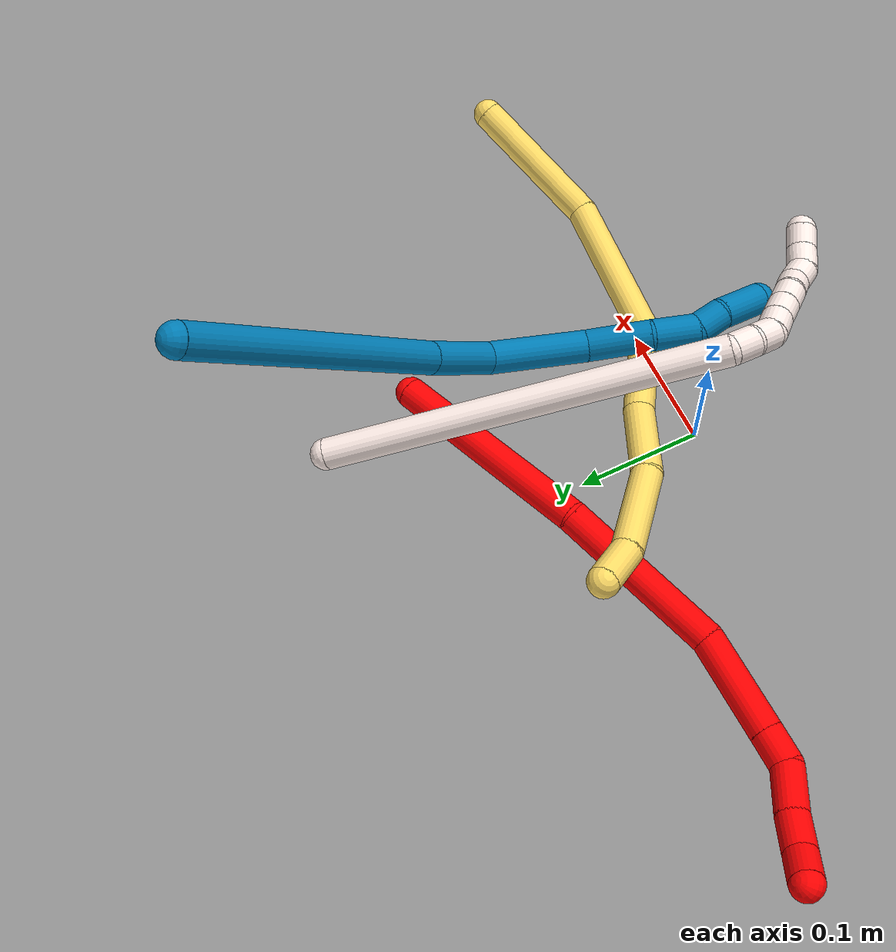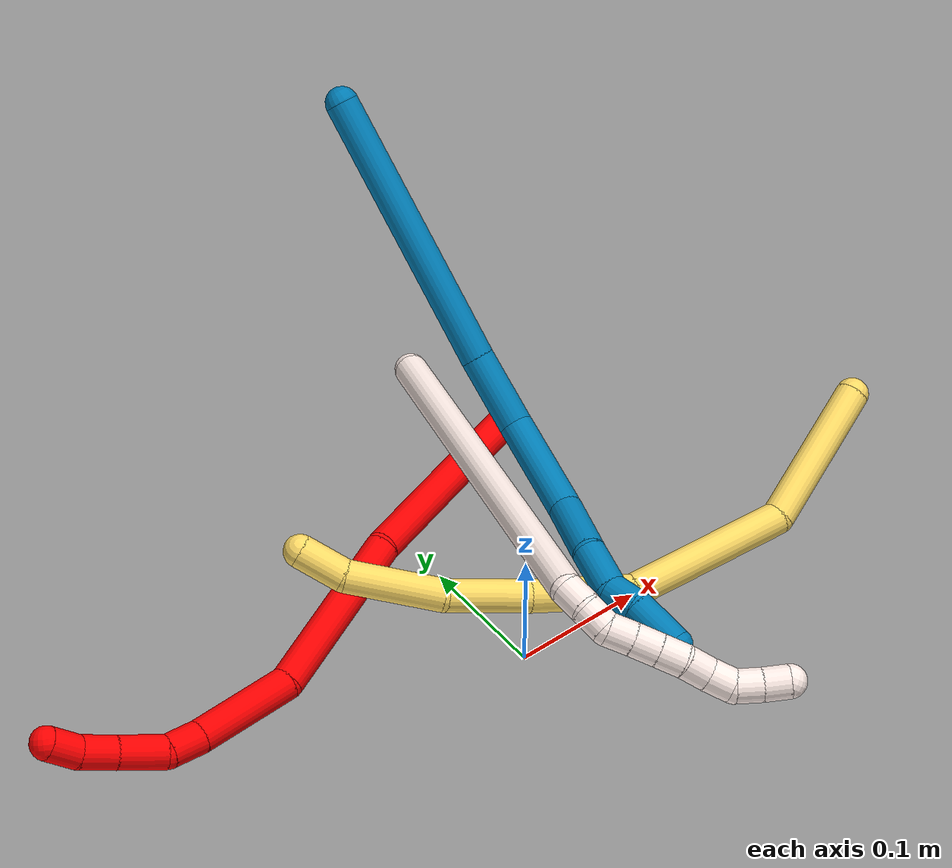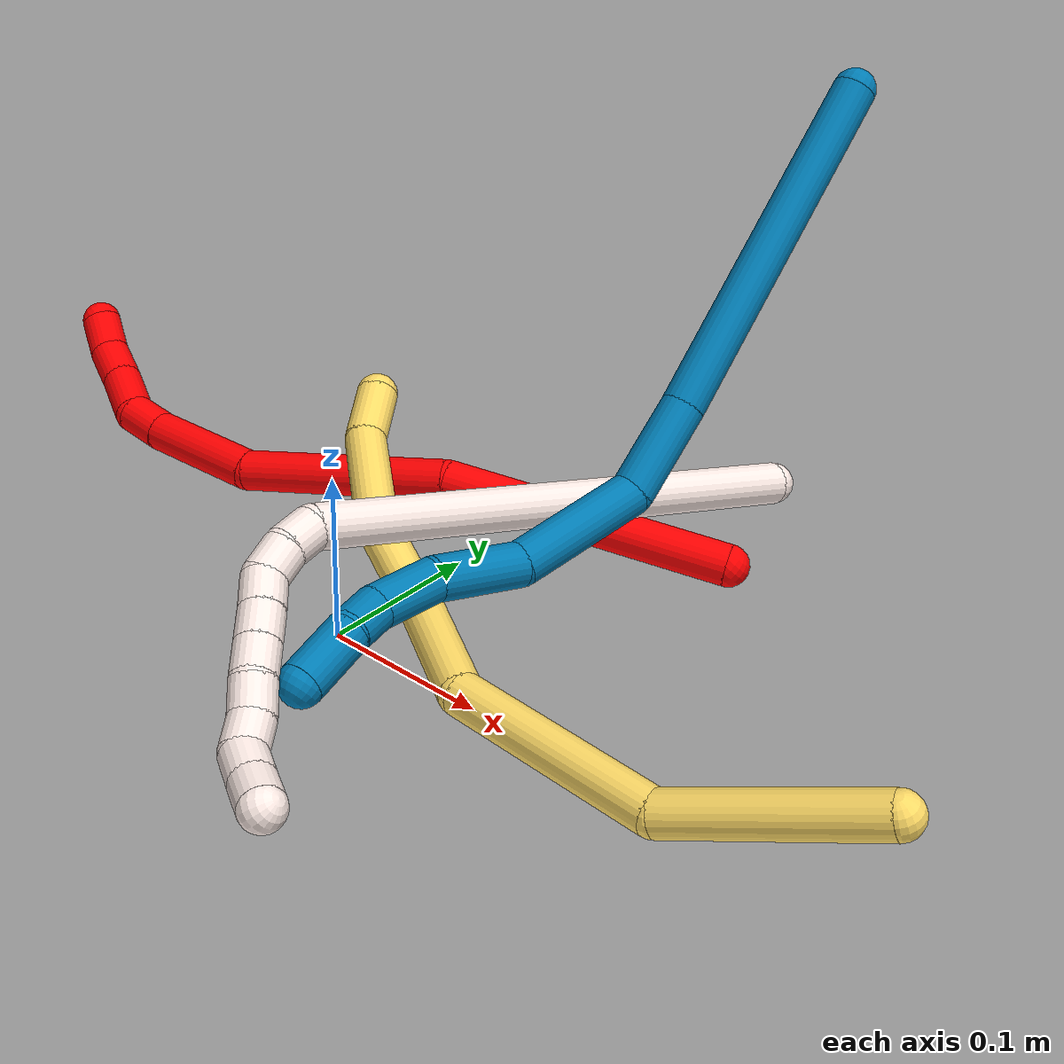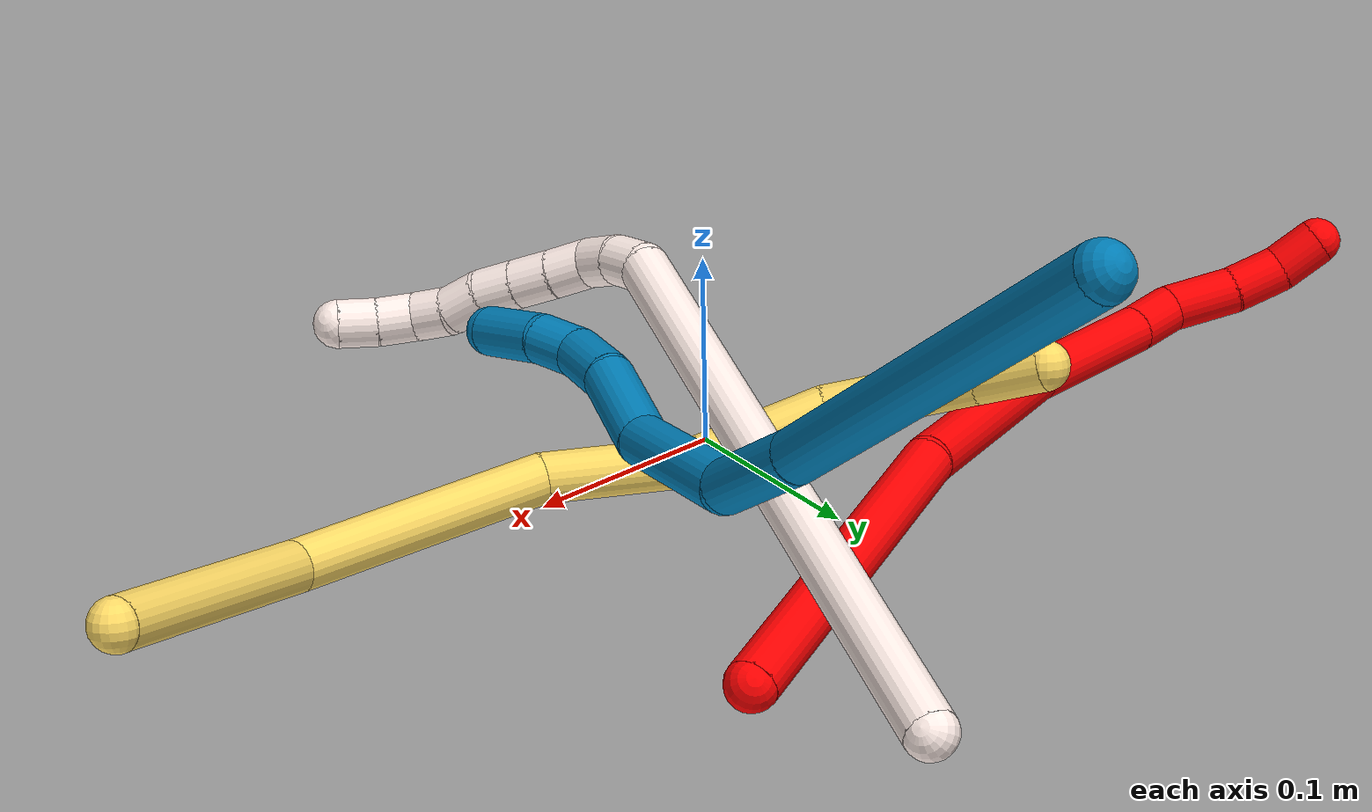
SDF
<sdf version="1.7">
 <world name="default">
  <model name="2">
   <static>0</static>
   <link name="2">
    <collision name="collision-cylinder-e_1_1_4">
     <pose>-0.074376 -0.023233 0.037831 0.550752 -1.03266 -0.3181</pose>
     <geometry><cylinder><radius>0.0125</radius><length>0.173237</length></cylinder></geometry>
     <surface>
      <friction><ode><mu>1.16</mu><mu2>1.16</mu2><slip1>0</slip1><slip2>0</slip2></ode></friction>
      <contact><ode><kp>1e+06</kp><kd>1</kd><max_vel>0</max_vel><min_depth>0.001</min_depth></ode></contact>
     </surface>
    </collision>
    <visual name="visual-cylinder-e_1_1_4">
     <pose>-0.074376 -0.023233 0.037831 0.550752 -1.03266 -0.3181</pose>
     <geometry><cylinder><radius>0.0125</radius><length>0.173237</length></cylinder></geometry>
     <material><ambient>1 0 0 1</ambient></material>
    </visual>
    <collision name="collision-cylinder-e_2_4_5">
     <pose>-0.19493 -0.069281 0.117734 0.496887 -0.767515 -0.204152</pose>
     <geometry><cylinder><radius>0.0125</radius><length>0.133011</length></cylinder></geometry>
     <surface>
      <friction><ode><mu>1.16</mu><mu2>1.16</mu2><slip1>0</slip1><slip2>0</slip2></ode></friction>
      <contact><ode><kp>1e+06</kp><kd>1</kd><max_vel>0</max_vel><min_depth>0.001</min_depth></ode></contact>
     </surface>
    </collision>
    <visual name="visual-cylinder-e_2_4_5">
     <pose>-0.19493 -0.069281 0.117734 0.496887 -0.767515 -0.204152</pose>
     <geometry><cylinder><radius>0.0125</radius><length>0.133011</length></cylinder></geometry>
     <material><ambient>1 0 0 1</ambient></material>
    </visual>
    <collision name="collision-cylinder-e_3_5_6">
     <pose>-0.269728 -0.114662 0.173634 1.02104 -0.824484 -0.480354</pose>
     <geometry><cylinder><radius>0.0125</radius><length>0.077964</length></cylinder></geometry>
     <surface>
      <friction><ode><mu>1.16</mu><mu2>1.16</mu2><slip1>0</slip1><slip2>0</slip2></ode></friction>
      <contact><ode><kp>1e+06</kp><kd>1</kd><max_vel>0</max_vel><min_depth>0.001</min_depth></ode></contact>
     </surface>
    </collision>
    <visual name="visual-cylinder-e_3_5_6">
     <pose>-0.269728 -0.114662 0.173634 1.02104 -0.824484 -0.480354</pose>
     <geometry><cylinder><radius>0.0125</radius><length>0.077964</length></cylinder></geometry>
     <material><ambient>1 0 0 1</ambient></material>
    </visual>
    <collision name="collision-cylinder-e_4_6_7">
     <pose>-0.309079 -0.144899 0.190662 1.17559 -0.911775 -0.631616</pose>
     <geometry><cylinder><radius>0.0125</radius><length>0.027145</length></cylinder></geometry>
     <surface>
      <friction><ode><mu>1.16</mu><mu2>1.16</mu2><slip1>0</slip1><slip2>0</slip2></ode></friction>
      <contact><ode><kp>1e+06</kp><kd>1</kd><max_vel>0</max_vel><min_depth>0.001</min_depth></ode></contact>
     </surface>
    </collision>
    <visual name="visual-cylinder-e_4_6_7">
     <pose>-0.309079 -0.144899 0.190662 1.17559 -0.911775 -0.631616</pose>
     <geometry><cylinder><radius>0.0125</radius><length>0.027145</length></cylinder></geometry>
     <material><ambient>1 0 0 1</ambient></material>
    </visual>
    <collision name="collision-cylinder-e_5_7_8">
     <pose>-0.33043 -0.166855 0.191658 1.72383 -0.633669 -0.730361</pose>
     <geometry><cylinder><radius>0.0125</radius><length>0.035874</length></cylinder></geometry>
     <surface>
      <friction><ode><mu>1.16</mu><mu2>1.16</mu2><slip1>0</slip1><slip2>0</slip2></ode></friction>
      <contact><ode><kp>1e+06</kp><kd>1</kd><max_vel>0</max_vel><min_depth>0.001</min_depth></ode></contact>
     </surface>
    </collision>
    <visual name="visual-cylinder-e_5_7_8">
     <pose>-0.33043 -0.166855 0.191658 1.72383 -0.633669 -0.730361</pose>
     <geometry><cylinder><radius>0.0125</radius><length>0.035874</length></cylinder></geometry>
     <material><ambient>1 0 0 1</ambient></material>
    </visual>
    <collision name="collision-cylinder-e_6_8_9">
     <pose>-0.350727 -0.190916 0.187266 1.79111 -0.768077 -0.934656</pose>
     <geometry><cylinder><radius>0.0125</radius><length>0.027856</length></cylinder></geometry>
     <surface>
      <friction><ode><mu>1.16</mu><mu2>1.16</mu2><slip1>0</slip1><slip2>0</slip2></ode></friction>
      <contact><ode><kp>1e+06</kp><kd>1</kd><max_vel>0</max_vel><min_depth>0.001</min_depth></ode></contact>
     </surface>
    </collision>
    <visual name="visual-cylinder-e_6_8_9">
     <pose>-0.350727 -0.190916 0.187266 1.79111 -0.768077 -0.934656</pose>
     <geometry><cylinder><radius>0.0125</radius><length>0.027856</length></cylinder></geometry>
     <material><ambient>1 0 0 1</ambient></material>
    </visual>
    <collision name="collision-cylinder-e_7_9_2">
     <pose>-0.369663 -0.207413 0.180151 2.20323 -0.838023 -1.44171</pose>
     <geometry><cylinder><radius>0.0125</radius><length>0.024913</length></cylinder></geometry>
     <surface>
      <friction><ode><mu>1.16</mu><mu2>1.16</mu2><slip1>0</slip1><slip2>0</slip2></ode></friction>
      <contact><ode><kp>1e+06</kp><kd>1</kd><max_vel>0</max_vel><min_depth>0.001</min_depth></ode></contact>
     </surface>
    </collision>
    <visual name="visual-cylinder-e_7_9_2">
     <pose>-0.369663 -0.207413 0.180151 2.20323 -0.838023 -1.44171</pose>
     <geometry><cylinder><radius>0.0125</radius><length>0.024913</length></cylinder></geometry>
     <material><ambient>1 0 0 1</ambient></material>
    </visual>
    <collision name="collision-sphere-2">
     <pose>-0.378922 -0.214134 0.175225 0 -0 0</pose>
     <geometry><sphere><radius>0.0125</radius></sphere></geometry>
     <surface>
      <friction><ode><mu>1.16</mu><mu2>1.16</mu2><slip1>0</slip1><slip2>0</slip2></ode></friction>
      <contact><ode><kp>1e+06</kp><kd>1</kd><max_vel>0</max_vel><min_depth>0.001</min_depth></ode></contact>
     </surface>
    </collision>
    <visual name="visual-sphere-2">
     <pose>-0.378922 -0.214134 0.175225 0 -0 0</pose>
     <geometry><sphere><radius>0.0125</radius></sphere></geometry>
     <material><ambient>1 0 0 1</ambient></material>
    </visual>
    <collision name="collision-sphere-9">
     <pose>-0.360404 -0.200692 0.185076 0 -0 0</pose>
     <geometry><sphere><radius>0.0125</radius></sphere></geometry>
     <surface>
      <friction><ode><mu>1.16</mu><mu2>1.16</mu2><slip1>0</slip1><slip2>0</slip2></ode></friction>
      <contact><ode><kp>1e+06</kp><kd>1</kd><max_vel>0</max_vel><min_depth>0.001</min_depth></ode></contact>
     </surface>
    </collision>
    <visual name="visual-sphere-9">
     <pose>-0.360404 -0.200692 0.185076 0 -0 0</pose>
     <geometry><sphere><radius>0.0125</radius></sphere></geometry>
     <material><ambient>1 0 0 1</ambient></material>
    </visual>
    <collision name="collision-sphere-4">
     <pose>-0.148752 -0.046467 0.075662 0 -0 0</pose>
     <geometry><sphere><radius>0.0125</radius></sphere></geometry>
     <surface>
      <friction><ode><mu>1.16</mu><mu2>1.16</mu2><slip1>0</slip1><slip2>0</slip2></ode></friction>
      <contact><ode><kp>1e+06</kp><kd>1</kd><max_vel>0</max_vel><min_depth>0.001</min_depth></ode></contact>
     </surface>
    </collision>
    <visual name="visual-sphere-4">
     <pose>-0.148752 -0.046467 0.075662 0 -0 0</pose>
     <geometry><sphere><radius>0.0125</radius></sphere></geometry>
     <material><ambient>1 0 0 1</ambient></material>
    </visual>
    <collision name="collision-sphere-1">
     <geometry><sphere><radius>0.0125</radius></sphere></geometry>
     <surface>
      <friction><ode><mu>1.16</mu><mu2>1.16</mu2><slip1>0</slip1><slip2>0</slip2></ode></friction>
      <contact><ode><kp>1e+06</kp><kd>1</kd><max_vel>0</max_vel><min_depth>0.001</min_depth></ode></contact>
     </surface>
    </collision>
    <visual name="visual-sphere-1">
     <geometry><sphere><radius>0.0125</radius></sphere></geometry>
     <material><ambient>1 0 0 1</ambient></material>
    </visual>
    <collision name="collision-sphere-8">
     <pose>-0.34105 -0.181141 0.189455 0 -0 0</pose>
     <geometry><sphere><radius>0.0125</radius></sphere></geometry>
     <surface>
      <friction><ode><mu>1.16</mu><mu2>1.16</mu2><slip1>0</slip1><slip2>0</slip2></ode></friction>
      <contact><ode><kp>1e+06</kp><kd>1</kd><max_vel>0</max_vel><min_depth>0.001</min_depth></ode></contact>
     </surface>
    </collision>
    <visual name="visual-sphere-8">
     <pose>-0.34105 -0.181141 0.189455 0 -0 0</pose>
     <geometry><sphere><radius>0.0125</radius></sphere></geometry>
     <material><ambient>1 0 0 1</ambient></material>
    </visual>
    <collision name="collision-sphere-5">
     <pose>-0.241108 -0.092095 0.159806 0 -0 0</pose>
     <geometry><sphere><radius>0.0125</radius></sphere></geometry>
     <surface>
      <friction><ode><mu>1.16</mu><mu2>1.16</mu2><slip1>0</slip1><slip2>0</slip2></ode></friction>
      <contact><ode><kp>1e+06</kp><kd>1</kd><max_vel>0</max_vel><min_depth>0.001</min_depth></ode></contact>
     </surface>
    </collision>
    <visual name="visual-sphere-5">
     <pose>-0.241108 -0.092095 0.159806 0 -0 0</pose>
     <geometry><sphere><radius>0.0125</radius></sphere></geometry>
     <material><ambient>1 0 0 1</ambient></material>
    </visual>
    <collision name="collision-sphere-6">
     <pose>-0.298349 -0.137228 0.187462 0 -0 0</pose>
     <geometry><sphere><radius>0.0125</radius></sphere></geometry>
     <surface>
      <friction><ode><mu>1.16</mu><mu2>1.16</mu2><slip1>0</slip1><slip2>0</slip2></ode></friction>
      <contact><ode><kp>1e+06</kp><kd>1</kd><max_vel>0</max_vel><min_depth>0.001</min_depth></ode></contact>
     </surface>
    </collision>
    <visual name="visual-sphere-6">
     <pose>-0.298349 -0.137228 0.187462 0 -0 0</pose>
     <geometry><sphere><radius>0.0125</radius></sphere></geometry>
     <material><ambient>1 0 0 1</ambient></material>
    </visual>
    <collision name="collision-sphere-7">
     <pose>-0.319809 -0.152569 0.193862 0 -0 0</pose>
     <geometry><sphere><radius>0.0125</radius></sphere></geometry>
     <surface>
      <friction><ode><mu>1.16</mu><mu2>1.16</mu2><slip1>0</slip1><slip2>0</slip2></ode></friction>
      <contact><ode><kp>1e+06</kp><kd>1</kd><max_vel>0</max_vel><min_depth>0.001</min_depth></ode></contact>
     </surface>
    </collision>
    <visual name="visual-sphere-7">
     <pose>-0.319809 -0.152569 0.193862 0 -0 0</pose>
     <geometry><sphere><radius>0.0125</radius></sphere></geometry>
     <material><ambient>1 0 0 1</ambient></material>
    </visual>
    <inertial>
     <pose>-0.19813 -0.085168 0.115013 0 -0 0</pose>
     <mass>0.5</mass>
     <inertia>
      <ixx>0.000238</ixx>
      <ixy>0</ixy>
      <ixz>0</ixz>
      <iyy>0.000506</iyy>
      <iyz>0</iyz>
      <izz>0.000792</izz>
     </inertia>
    </inertial>
   </link>
   <pose>0.127655 0.188297 0.011474 2.7295 0.652305 0.442909</pose>
  </model>
  <model name="5">
   <static>0</static>
   <link name="5">
    <collision name="collision-cylinder-e_1_1_4">
     <pose>-0.028236 0.051299 0.004105 -1.49095 -0.501815 0.464692</pose>
     <geometry><cylinder><radius>0.0125</radius><length>0.1174</length></cylinder></geometry>
     <surface>
      <friction><ode><mu>1.16</mu><mu2>1.16</mu2><slip1>0</slip1><slip2>0</slip2></ode></friction>
      <contact><ode><kp>1e+06</kp><kd>1</kd><max_vel>0</max_vel><min_depth>0.001</min_depth></ode></contact>
     </surface>
    </collision>
    <visual name="visual-cylinder-e_1_1_4">
     <pose>-0.028236 0.051299 0.004105 -1.49095 -0.501815 0.464692</pose>
     <geometry><cylinder><radius>0.0125</radius><length>0.1174</length></cylinder></geometry>
     <material><ambient>1 0.858824 0.4 1</ambient></material>
    </visual>
    <collision name="collision-cylinder-e_2_4_5">
     <pose>-0.110136 0.139168 -0.00053 -1.80537 -0.959628 1.16588</pose>
     <geometry><cylinder><radius>0.0125</radius><length>0.131052</length></cylinder></geometry>
     <surface>
      <friction><ode><mu>1.16</mu><mu2>1.16</mu2><slip1>0</slip1><slip2>0</slip2></ode></friction>
      <contact><ode><kp>1e+06</kp><kd>1</kd><max_vel>0</max_vel><min_depth>0.001</min_depth></ode></contact>
     </surface>
    </collision>
    <visual name="visual-cylinder-e_2_4_5">
     <pose>-0.110136 0.139168 -0.00053 -1.80537 -0.959628 1.16588</pose>
     <geometry><cylinder><radius>0.0125</radius><length>0.131052</length></cylinder></geometry>
     <material><ambient>1 0.858824 0.4 1</ambient></material>
    </visual>
    <collision name="collision-cylinder-e_3_5_6">
     <pose>-0.201477 0.180117 -0.010801 -1.90746 -1.44831 1.78945</pose>
     <geometry><cylinder><radius>0.0125</radius><length>0.075923</length></cylinder></geometry>
     <surface>
      <friction><ode><mu>1.16</mu><mu2>1.16</mu2><slip1>0</slip1><slip2>0</slip2></ode></friction>
      <contact><ode><kp>1e+06</kp><kd>1</kd><max_vel>0</max_vel><min_depth>0.001</min_depth></ode></contact>
     </surface>
    </collision>
    <visual name="visual-cylinder-e_3_5_6">
     <pose>-0.201477 0.180117 -0.010801 -1.90746 -1.44831 1.78945</pose>
     <geometry><cylinder><radius>0.0125</radius><length>0.075923</length></cylinder></geometry>
     <material><ambient>1 0.858824 0.4 1</ambient></material>
    </visual>
    <collision name="collision-cylinder-e_4_6_7">
     <pose>-0.270007 0.190365 -0.022222 -2.60582 -1.21403 2.38881</pose>
     <geometry><cylinder><radius>0.0125</radius><length>0.065852</length></cylinder></geometry>
     <surface>
      <friction><ode><mu>1.16</mu><mu2>1.16</mu2><slip1>0</slip1><slip2>0</slip2></ode></friction>
      <contact><ode><kp>1e+06</kp><kd>1</kd><max_vel>0</max_vel><min_depth>0.001</min_depth></ode></contact>
     </surface>
    </collision>
    <visual name="visual-cylinder-e_4_6_7">
     <pose>-0.270007 0.190365 -0.022222 -2.60582 -1.21403 2.38881</pose>
     <geometry><cylinder><radius>0.0125</radius><length>0.065852</length></cylinder></geometry>
     <material><ambient>1 0.858824 0.4 1</ambient></material>
    </visual>
    <collision name="collision-cylinder-e_5_7_8">
     <pose>-0.336888 0.193183 -0.038775 2.71212 -1.37007 -2.61987</pose>
     <geometry><cylinder><radius>0.0125</radius><length>0.073534</length></cylinder></geometry>
     <surface>
      <friction><ode><mu>1.16</mu><mu2>1.16</mu2><slip1>0</slip1><slip2>0</slip2></ode></friction>
      <contact><ode><kp>1e+06</kp><kd>1</kd><max_vel>0</max_vel><min_depth>0.001</min_depth></ode></contact>
     </surface>
    </collision>
    <visual name="visual-cylinder-e_5_7_8">
     <pose>-0.336888 0.193183 -0.038775 2.71212 -1.37007 -2.61987</pose>
     <geometry><cylinder><radius>0.0125</radius><length>0.073534</length></cylinder></geometry>
     <material><ambient>1 0.858824 0.4 1</ambient></material>
    </visual>
    <collision name="collision-cylinder-e_6_8_2">
     <pose>-0.389002 0.183015 -0.049794 2.11992 -1.09236 -1.6519</pose>
     <geometry><cylinder><radius>0.0125</radius><length>0.036239</length></cylinder></geometry>
     <surface>
      <friction><ode><mu>1.16</mu><mu2>1.16</mu2><slip1>0</slip1><slip2>0</slip2></ode></friction>
      <contact><ode><kp>1e+06</kp><kd>1</kd><max_vel>0</max_vel><min_depth>0.001</min_depth></ode></contact>
     </surface>
    </collision>
    <visual name="visual-cylinder-e_6_8_2">
     <pose>-0.389002 0.183015 -0.049794 2.11992 -1.09236 -1.6519</pose>
     <geometry><cylinder><radius>0.0125</radius><length>0.036239</length></cylinder></geometry>
     <material><ambient>1 0.858824 0.4 1</ambient></material>
    </visual>
    <collision name="collision-sphere-2">
     <pose>-0.405087 0.1759 -0.054148 0 -0 0</pose>
     <geometry><sphere><radius>0.0125</radius></sphere></geometry>
     <surface>
      <friction><ode><mu>1.16</mu><mu2>1.16</mu2><slip1>0</slip1><slip2>0</slip2></ode></friction>
      <contact><ode><kp>1e+06</kp><kd>1</kd><max_vel>0</max_vel><min_depth>0.001</min_depth></ode></contact>
     </surface>
    </collision>
    <visual name="visual-sphere-2">
     <pose>-0.405087 0.1759 -0.054148 0 -0 0</pose>
     <geometry><sphere><radius>0.0125</radius></sphere></geometry>
     <material><ambient>1 0.858824 0.4 1</ambient></material>
    </visual>
    <collision name="collision-sphere-4">
     <pose>-0.056471 0.102598 0.008209 0 -0 0</pose>
     <geometry><sphere><radius>0.0125</radius></sphere></geometry>
     <surface>
      <friction><ode><mu>1.16</mu><mu2>1.16</mu2><slip1>0</slip1><slip2>0</slip2></ode></friction>
      <contact><ode><kp>1e+06</kp><kd>1</kd><max_vel>0</max_vel><min_depth>0.001</min_depth></ode></contact>
     </surface>
    </collision>
    <visual name="visual-sphere-4">
     <pose>-0.056471 0.102598 0.008209 0 -0 0</pose>
     <geometry><sphere><radius>0.0125</radius></sphere></geometry>
     <material><ambient>1 0.858824 0.4 1</ambient></material>
    </visual>
    <collision name="collision-sphere-1">
     <geometry><sphere><radius>0.0125</radius></sphere></geometry>
     <surface>
      <friction><ode><mu>1.16</mu><mu2>1.16</mu2><slip1>0</slip1><slip2>0</slip2></ode></friction>
      <contact><ode><kp>1e+06</kp><kd>1</kd><max_vel>0</max_vel><min_depth>0.001</min_depth></ode></contact>
     </surface>
    </collision>
    <visual name="visual-sphere-1">
     <geometry><sphere><radius>0.0125</radius></sphere></geometry>
     <material><ambient>1 0.858824 0.4 1</ambient></material>
    </visual>
    <collision name="collision-sphere-8">
     <pose>-0.372917 0.190131 -0.04544 0 -0 0</pose>
     <geometry><sphere><radius>0.0125</radius></sphere></geometry>
     <surface>
      <friction><ode><mu>1.16</mu><mu2>1.16</mu2><slip1>0</slip1><slip2>0</slip2></ode></friction>
      <contact><ode><kp>1e+06</kp><kd>1</kd><max_vel>0</max_vel><min_depth>0.001</min_depth></ode></contact>
     </surface>
    </collision>
    <visual name="visual-sphere-8">
     <pose>-0.372917 0.190131 -0.04544 0 -0 0</pose>
     <geometry><sphere><radius>0.0125</radius></sphere></geometry>
     <material><ambient>1 0.858824 0.4 1</ambient></material>
    </visual>
    <collision name="collision-sphere-5">
     <pose>-0.1638 0.175739 -0.009269 0 -0 0</pose>
     <geometry><sphere><radius>0.0125</radius></sphere></geometry>
     <surface>
      <friction><ode><mu>1.16</mu><mu2>1.16</mu2><slip1>0</slip1><slip2>0</slip2></ode></friction>
      <contact><ode><kp>1e+06</kp><kd>1</kd><max_vel>0</max_vel><min_depth>0.001</min_depth></ode></contact>
     </surface>
    </collision>
    <visual name="visual-sphere-5">
     <pose>-0.1638 0.175739 -0.009269 0 -0 0</pose>
     <geometry><sphere><radius>0.0125</radius></sphere></geometry>
     <material><ambient>1 0.858824 0.4 1</ambient></material>
    </visual>
    <collision name="collision-sphere-6">
     <pose>-0.239154 0.184495 -0.012334 0 -0 0</pose>
     <geometry><sphere><radius>0.0125</radius></sphere></geometry>
     <surface>
      <friction><ode><mu>1.16</mu><mu2>1.16</mu2><slip1>0</slip1><slip2>0</slip2></ode></friction>
      <contact><ode><kp>1e+06</kp><kd>1</kd><max_vel>0</max_vel><min_depth>0.001</min_depth></ode></contact>
     </surface>
    </collision>
    <visual name="visual-sphere-6">
     <pose>-0.239154 0.184495 -0.012334 0 -0 0</pose>
     <geometry><sphere><radius>0.0125</radius></sphere></geometry>
     <material><ambient>1 0.858824 0.4 1</ambient></material>
    </visual>
    <collision name="collision-sphere-7">
     <pose>-0.300859 0.196236 -0.03211 0 -0 0</pose>
     <geometry><sphere><radius>0.0125</radius></sphere></geometry>
     <surface>
      <friction><ode><mu>1.16</mu><mu2>1.16</mu2><slip1>0</slip1><slip2>0</slip2></ode></friction>
      <contact><ode><kp>1e+06</kp><kd>1</kd><max_vel>0</max_vel><min_depth>0.001</min_depth></ode></contact>
     </surface>
    </collision>
    <visual name="visual-sphere-7">
     <pose>-0.300859 0.196236 -0.03211 0 -0 0</pose>
     <geometry><sphere><radius>0.0125</radius></sphere></geometry>
     <material><ambient>1 0.858824 0.4 1</ambient></material>
    </visual>
    <inertial>
     <pose>-0.179391 0.142619 -0.013053 0 -0 0</pose>
     <mass>0.5</mass>
     <inertia>
      <ixx>0.000268</ixx>
      <ixy>0</ixy>
      <ixz>0</ixz>
      <iyy>0.000442</iyy>
      <iyz>0</iyz>
      <izz>9.1e-05</izz>
     </inertia>
    </inertial>
   </link>
   <pose>0.331901 0.024015 0.046814 -2.85917 0.032547 -0.67901</pose>
  </model>
  <model name="9">
   <static>0</static>
   <link name="9">
    <collision name="collision-cylinder-e_1_1_4">
     <pose>-0.007463 0.005754 -0.105353 -3.08703 -0.070616 1.82603</pose>
     <geometry><cylinder><radius>0.0125</radius><length>0.211548</length></cylinder></geometry>
     <surface>
      <friction><ode><mu>1.16</mu><mu2>1.16</mu2><slip1>0</slip1><slip2>0</slip2></ode></friction>
      <contact><ode><kp>1e+06</kp><kd>1</kd><max_vel>0</max_vel><min_depth>0.001</min_depth></ode></contact>
     </surface>
    </collision>
    <visual name="visual-cylinder-e_1_1_4">
     <pose>-0.007463 0.005754 -0.105353 -3.08703 -0.070616 1.82603</pose>
     <geometry><cylinder><radius>0.0125</radius><length>0.211548</length></cylinder></geometry>
     <material><ambient>0 0.490196 0.709804 1</ambient></material>
    </visual>
    <collision name="collision-cylinder-e_2_4_5">
     <pose>-0.015387 0.011637 -0.23932 -3.13709 -0.016089 2.5956</pose>
     <geometry><cylinder><radius>0.0125</radius><length>0.057234</length></cylinder></geometry>
     <surface>
      <friction><ode><mu>1.16</mu><mu2>1.16</mu2><slip1>0</slip1><slip2>0</slip2></ode></friction>
      <contact><ode><kp>1e+06</kp><kd>1</kd><max_vel>0</max_vel><min_depth>0.001</min_depth></ode></contact>
     </surface>
    </collision>
    <visual name="visual-cylinder-e_2_4_5">
     <pose>-0.015387 0.011637 -0.23932 -3.13709 -0.016089 2.5956</pose>
     <geometry><cylinder><radius>0.0125</radius><length>0.057234</length></cylinder></geometry>
     <material><ambient>0 0.490196 0.709804 1</ambient></material>
    </visual>
    <collision name="collision-cylinder-e_3_5_6">
     <pose>-0.009055 -0.005651 -0.30314 2.68218 0.171216 0.703484</pose>
     <geometry><cylinder><radius>0.0125</radius><length>0.079726</length></cylinder></geometry>
     <surface>
      <friction><ode><mu>1.16</mu><mu2>1.16</mu2><slip1>0</slip1><slip2>0</slip2></ode></friction>
      <contact><ode><kp>1e+06</kp><kd>1</kd><max_vel>0</max_vel><min_depth>0.001</min_depth></ode></contact>
     </surface>
    </collision>
    <visual name="visual-cylinder-e_3_5_6">
     <pose>-0.009055 -0.005651 -0.30314 2.68218 0.171216 0.703484</pose>
     <geometry><cylinder><radius>0.0125</radius><length>0.079726</length></cylinder></geometry>
     <material><ambient>0 0.490196 0.709804 1</ambient></material>
    </visual>
    <collision name="collision-cylinder-e_4_6_7">
     <pose>0.004146 -0.041326 -0.355426 2.32289 0.250951 0.565868</pose>
     <geometry><cylinder><radius>0.0125</radius><length>0.051617</length></cylinder></geometry>
     <surface>
      <friction><ode><mu>1.16</mu><mu2>1.16</mu2><slip1>0</slip1><slip2>0</slip2></ode></friction>
      <contact><ode><kp>1e+06</kp><kd>1</kd><max_vel>0</max_vel><min_depth>0.001</min_depth></ode></contact>
     </surface>
    </collision>
    <visual name="visual-cylinder-e_4_6_7">
     <pose>0.004146 -0.041326 -0.355426 2.32289 0.250951 0.565868</pose>
     <geometry><cylinder><radius>0.0125</radius><length>0.051617</length></cylinder></geometry>
     <material><ambient>0 0.490196 0.709804 1</ambient></material>
    </visual>
    <collision name="collision-cylinder-e_5_7_8">
     <pose>0.014155 -0.069109 -0.38767 2.58067 0.198424 0.665422</pose>
     <geometry><cylinder><radius>0.0125</radius><length>0.036534</length></cylinder></geometry>
     <surface>
      <friction><ode><mu>1.16</mu><mu2>1.16</mu2><slip1>0</slip1><slip2>0</slip2></ode></friction>
      <contact><ode><kp>1e+06</kp><kd>1</kd><max_vel>0</max_vel><min_depth>0.001</min_depth></ode></contact>
     </surface>
    </collision>
    <visual name="visual-cylinder-e_5_7_8">
     <pose>0.014155 -0.069109 -0.38767 2.58067 0.198424 0.665422</pose>
     <geometry><cylinder><radius>0.0125</radius><length>0.036534</length></cylinder></geometry>
     <material><ambient>0 0.490196 0.709804 1</ambient></material>
    </visual>
    <collision name="collision-cylinder-e_6_8_9">
     <pose>0.024285 -0.081921 -0.41256 2.8158 0.566462 2.11352</pose>
     <geometry><cylinder><radius>0.0125</radius><length>0.024331</length></cylinder></geometry>
     <surface>
      <friction><ode><mu>1.16</mu><mu2>1.16</mu2><slip1>0</slip1><slip2>0</slip2></ode></friction>
      <contact><ode><kp>1e+06</kp><kd>1</kd><max_vel>0</max_vel><min_depth>0.001</min_depth></ode></contact>
     </surface>
    </collision>
    <visual name="visual-cylinder-e_6_8_9">
     <pose>0.024285 -0.081921 -0.41256 2.8158 0.566462 2.11352</pose>
     <geometry><cylinder><radius>0.0125</radius><length>0.024331</length></cylinder></geometry>
     <material><ambient>0 0.490196 0.709804 1</ambient></material>
    </visual>
    <collision name="collision-cylinder-e_7_9_2">
     <pose>0.0376 -0.089176 -0.440135 2.92279 0.355352 2.04364</pose>
     <geometry><cylinder><radius>0.0125</radius><length>0.03901</length></cylinder></geometry>
     <surface>
      <friction><ode><mu>1.16</mu><mu2>1.16</mu2><slip1>0</slip1><slip2>0</slip2></ode></friction>
      <contact><ode><kp>1e+06</kp><kd>1</kd><max_vel>0</max_vel><min_depth>0.001</min_depth></ode></contact>
     </surface>
    </collision>
    <visual name="visual-cylinder-e_7_9_2">
     <pose>0.0376 -0.089176 -0.440135 2.92279 0.355352 2.04364</pose>
     <geometry><cylinder><radius>0.0125</radius><length>0.03901</length></cylinder></geometry>
     <material><ambient>0 0.490196 0.709804 1</ambient></material>
    </visual>
    <collision name="collision-sphere-2">
     <pose>0.044386 -0.093146 -0.457986 0 -0 0</pose>
     <geometry><sphere><radius>0.0125</radius></sphere></geometry>
     <surface>
      <friction><ode><mu>1.16</mu><mu2>1.16</mu2><slip1>0</slip1><slip2>0</slip2></ode></friction>
      <contact><ode><kp>1e+06</kp><kd>1</kd><max_vel>0</max_vel><min_depth>0.001</min_depth></ode></contact>
     </surface>
    </collision>
    <visual name="visual-sphere-2">
     <pose>0.044386 -0.093146 -0.457986 0 -0 0</pose>
     <geometry><sphere><radius>0.0125</radius></sphere></geometry>
     <material><ambient>0 0.490196 0.709804 1</ambient></material>
    </visual>
    <collision name="collision-sphere-9">
     <pose>0.030814 -0.085207 -0.422285 0 -0 0</pose>
     <geometry><sphere><radius>0.0125</radius></sphere></geometry>
     <surface>
      <friction><ode><mu>1.16</mu><mu2>1.16</mu2><slip1>0</slip1><slip2>0</slip2></ode></friction>
      <contact><ode><kp>1e+06</kp><kd>1</kd><max_vel>0</max_vel><min_depth>0.001</min_depth></ode></contact>
     </surface>
    </collision>
    <visual name="visual-sphere-9">
     <pose>0.030814 -0.085207 -0.422285 0 -0 0</pose>
     <geometry><sphere><radius>0.0125</radius></sphere></geometry>
     <material><ambient>0 0.490196 0.709804 1</ambient></material>
    </visual>
    <collision name="collision-sphere-4">
     <pose>-0.014926 0.011508 -0.210707 0 -0 0</pose>
     <geometry><sphere><radius>0.0125</radius></sphere></geometry>
     <surface>
      <friction><ode><mu>1.16</mu><mu2>1.16</mu2><slip1>0</slip1><slip2>0</slip2></ode></friction>
      <contact><ode><kp>1e+06</kp><kd>1</kd><max_vel>0</max_vel><min_depth>0.001</min_depth></ode></contact>
     </surface>
    </collision>
    <visual name="visual-sphere-4">
     <pose>-0.014926 0.011508 -0.210707 0 -0 0</pose>
     <geometry><sphere><radius>0.0125</radius></sphere></geometry>
     <material><ambient>0 0.490196 0.709804 1</ambient></material>
    </visual>
    <collision name="collision-sphere-1">
     <geometry><sphere><radius>0.0125</radius></sphere></geometry>
     <surface>
      <friction><ode><mu>1.16</mu><mu2>1.16</mu2><slip1>0</slip1><slip2>0</slip2></ode></friction>
      <contact><ode><kp>1e+06</kp><kd>1</kd><max_vel>0</max_vel><min_depth>0.001</min_depth></ode></contact>
     </surface>
    </collision>
    <visual name="visual-sphere-1">
     <geometry><sphere><radius>0.0125</radius></sphere></geometry>
     <material><ambient>0 0.490196 0.709804 1</ambient></material>
    </visual>
    <collision name="collision-sphere-8">
     <pose>0.017756 -0.078636 -0.402834 0 -0 0</pose>
     <geometry><sphere><radius>0.0125</radius></sphere></geometry>
     <surface>
      <friction><ode><mu>1.16</mu><mu2>1.16</mu2><slip1>0</slip1><slip2>0</slip2></ode></friction>
      <contact><ode><kp>1e+06</kp><kd>1</kd><max_vel>0</max_vel><min_depth>0.001</min_depth></ode></contact>
     </surface>
    </collision>
    <visual name="visual-sphere-8">
     <pose>0.017756 -0.078636 -0.402834 0 -0 0</pose>
     <geometry><sphere><radius>0.0125</radius></sphere></geometry>
     <material><ambient>0 0.490196 0.709804 1</ambient></material>
    </visual>
    <collision name="collision-sphere-5">
     <pose>-0.015847 0.011766 -0.267933 0 -0 0</pose>
     <geometry><sphere><radius>0.0125</radius></sphere></geometry>
     <surface>
      <friction><ode><mu>1.16</mu><mu2>1.16</mu2><slip1>0</slip1><slip2>0</slip2></ode></friction>
      <contact><ode><kp>1e+06</kp><kd>1</kd><max_vel>0</max_vel><min_depth>0.001</min_depth></ode></contact>
     </surface>
    </collision>
    <visual name="visual-sphere-5">
     <pose>-0.015847 0.011766 -0.267933 0 -0 0</pose>
     <geometry><sphere><radius>0.0125</radius></sphere></geometry>
     <material><ambient>0 0.490196 0.709804 1</ambient></material>
    </visual>
    <collision name="collision-sphere-6">
     <pose>-0.002263 -0.023069 -0.338347 0 -0 0</pose>
     <geometry><sphere><radius>0.0125</radius></sphere></geometry>
     <surface>
      <friction><ode><mu>1.16</mu><mu2>1.16</mu2><slip1>0</slip1><slip2>0</slip2></ode></friction>
      <contact><ode><kp>1e+06</kp><kd>1</kd><max_vel>0</max_vel><min_depth>0.001</min_depth></ode></contact>
     </surface>
    </collision>
    <visual name="visual-sphere-6">
     <pose>-0.002263 -0.023069 -0.338347 0 -0 0</pose>
     <geometry><sphere><radius>0.0125</radius></sphere></geometry>
     <material><ambient>0 0.490196 0.709804 1</ambient></material>
    </visual>
    <collision name="collision-sphere-7">
     <pose>0.010555 -0.059582 -0.372505 0 -0 0</pose>
     <geometry><sphere><radius>0.0125</radius></sphere></geometry>
     <surface>
      <friction><ode><mu>1.16</mu><mu2>1.16</mu2><slip1>0</slip1><slip2>0</slip2></ode></friction>
      <contact><ode><kp>1e+06</kp><kd>1</kd><max_vel>0</max_vel><min_depth>0.001</min_depth></ode></contact>
     </surface>
    </collision>
    <visual name="visual-sphere-7">
     <pose>0.010555 -0.059582 -0.372505 0 -0 0</pose>
     <geometry><sphere><radius>0.0125</radius></sphere></geometry>
     <material><ambient>0 0.490196 0.709804 1</ambient></material>
    </visual>
    <inertial>
     <pose>-0.000785 -0.017394 -0.239739 0 -0 0</pose>
     <mass>0.5</mass>
     <inertia><ixx>0.000658</ixx><ixy>0</ixy><ixz>0</ixz><iyy>0.001003</iyy><iyz>0</iyz><izz>-4e-06</izz></inertia>
    </inertial>
   </link>
   <pose>0.091476 0.335273 0.248829 -0.717851 -0.641442 -0.567018</pose>
  </model>
  <model name="11">
   <static>0</static>
   <link name="11">
    <collision name="collision-cylinder-e_1_1_4">
     <pose>0.028373 -0.149746 -0.047178 1.876 0.178787 0.243223</pose>
     <geometry><cylinder><radius>0.0125</radius><length>0.31909</length></cylinder></geometry>
     <surface>
      <friction><ode><mu>1.16</mu><mu2>1.16</mu2><slip1>0</slip1><slip2>0</slip2></ode></friction>
      <contact><ode><kp>1e+06</kp><kd>1</kd><max_vel>0</max_vel><min_depth>0.001</min_depth></ode></contact>
     </surface>
    </collision>
    <visual name="visual-cylinder-e_1_1_4">
     <pose>0.028373 -0.149746 -0.047178 1.876 0.178787 0.243223</pose>
     <geometry><cylinder><radius>0.0125</radius><length>0.31909</length></cylinder></geometry>
     <material><ambient>1 0.933333 0.909804 1</ambient></material>
    </visual>
    <collision name="collision-cylinder-e_2_4_5">
     <pose>0.063012 -0.306816 -0.097603 1.98806 0.663753 0.974306</pose>
     <geometry><cylinder><radius>0.0125</radius><length>0.020344</length></cylinder></geometry>
     <surface>
      <friction><ode><mu>1.16</mu><mu2>1.16</mu2><slip1>0</slip1><slip2>0</slip2></ode></friction>
      <contact><ode><kp>1e+06</kp><kd>1</kd><max_vel>0</max_vel><min_depth>0.001</min_depth></ode></contact>
     </surface>
    </collision>
    <visual name="visual-cylinder-e_2_4_5">
     <pose>0.063012 -0.306816 -0.097603 1.98806 0.663753 0.974306</pose>
     <geometry><cylinder><radius>0.0125</radius><length>0.020344</length></cylinder></geometry>
     <material><ambient>1 0.933333 0.909804 1</ambient></material>
    </visual>
    <collision name="collision-cylinder-e_3_5_6">
     <pose>0.077138 -0.319355 -0.104473 2.17818 0.891233 1.48065</pose>
     <geometry><cylinder><radius>0.0125</radius><length>0.020206</length></cylinder></geometry>
     <surface>
      <friction><ode><mu>1.16</mu><mu2>1.16</mu2><slip1>0</slip1><slip2>0</slip2></ode></friction>
      <contact><ode><kp>1e+06</kp><kd>1</kd><max_vel>0</max_vel><min_depth>0.001</min_depth></ode></contact>
     </surface>
    </collision>
    <visual name="visual-cylinder-e_3_5_6">
     <pose>0.077138 -0.319355 -0.104473 2.17818 0.891233 1.48065</pose>
     <geometry><cylinder><radius>0.0125</radius><length>0.020206</length></cylinder></geometry>
     <material><ambient>1 0.933333 0.909804 1</ambient></material>
    </visual>
    <collision name="collision-cylinder-e_4_6_7">
     <pose>0.094752 -0.326977 -0.107867 1.47566 1.32769 1.23639</pose>
     <geometry><cylinder><radius>0.0125</radius><length>0.020103</length></cylinder></geometry>
     <surface>
      <friction><ode><mu>1.16</mu><mu2>1.16</mu2><slip1>0</slip1><slip2>0</slip2></ode></friction>
      <contact><ode><kp>1e+06</kp><kd>1</kd><max_vel>0</max_vel><min_depth>0.001</min_depth></ode></contact>
     </surface>
    </collision>
    <visual name="visual-cylinder-e_4_6_7">
     <pose>0.094752 -0.326977 -0.107867 1.47566 1.32769 1.23639</pose>
     <geometry><cylinder><radius>0.0125</radius><length>0.020103</length></cylinder></geometry>
     <material><ambient>1 0.933333 0.909804 1</ambient></material>
    </visual>
    <collision name="collision-cylinder-e_5_7_8">
     <pose>0.114175 -0.332173 -0.107642 1.5725 1.29006 1.2917</pose>
     <geometry><cylinder><radius>0.0125</radius><length>0.020121</length></cylinder></geometry>
     <surface>
      <friction><ode><mu>1.16</mu><mu2>1.16</mu2><slip1>0</slip1><slip2>0</slip2></ode></friction>
      <contact><ode><kp>1e+06</kp><kd>1</kd><max_vel>0</max_vel><min_depth>0.001</min_depth></ode></contact>
     </surface>
    </collision>
    <visual name="visual-cylinder-e_5_7_8">
     <pose>0.114175 -0.332173 -0.107642 1.5725 1.29006 1.2917</pose>
     <geometry><cylinder><radius>0.0125</radius><length>0.020121</length></cylinder></geometry>
     <material><ambient>1 0.933333 0.909804 1</ambient></material>
    </visual>
    <collision name="collision-cylinder-e_6_8_9">
     <pose>0.133474 -0.337718 -0.107663 1.57645 1.29203 1.29748</pose>
     <geometry><cylinder><radius>0.0125</radius><length>0.020039</length></cylinder></geometry>
     <surface>
      <friction><ode><mu>1.16</mu><mu2>1.16</mu2><slip1>0</slip1><slip2>0</slip2></ode></friction>
      <contact><ode><kp>1e+06</kp><kd>1</kd><max_vel>0</max_vel><min_depth>0.001</min_depth></ode></contact>
     </surface>
    </collision>
    <visual name="visual-cylinder-e_6_8_9">
     <pose>0.133474 -0.337718 -0.107663 1.57645 1.29203 1.29748</pose>
     <geometry><cylinder><radius>0.0125</radius><length>0.020039</length></cylinder></geometry>
     <material><ambient>1 0.933333 0.909804 1</ambient></material>
    </visual>
    <collision name="collision-cylinder-e_7_9_10">
     <pose>0.153014 -0.341513 -0.108737 2.36557 1.42222 2.25556</pose>
     <geometry><cylinder><radius>0.0125</radius><length>0.020035</length></cylinder></geometry>
     <surface>
      <friction><ode><mu>1.16</mu><mu2>1.16</mu2><slip1>0</slip1><slip2>0</slip2></ode></friction>
      <contact><ode><kp>1e+06</kp><kd>1</kd><max_vel>0</max_vel><min_depth>0.001</min_depth></ode></contact>
     </surface>
    </collision>
    <visual name="visual-cylinder-e_7_9_10">
     <pose>0.153014 -0.341513 -0.108737 2.36557 1.42222 2.25556</pose>
     <geometry><cylinder><radius>0.0125</radius><length>0.020035</length></cylinder></geometry>
     <material><ambient>1 0.933333 0.909804 1</ambient></material>
    </visual>
    <collision name="collision-cylinder-e_8_10_11">
     <pose>0.17215 -0.346389 -0.110128 1.65729 1.17547 1.25666</pose>
     <geometry><cylinder><radius>0.0125</radius><length>0.020002</length></cylinder></geometry>
     <surface>
      <friction><ode><mu>1.16</mu><mu2>1.16</mu2><slip1>0</slip1><slip2>0</slip2></ode></friction>
      <contact><ode><kp>1e+06</kp><kd>1</kd><max_vel>0</max_vel><min_depth>0.001</min_depth></ode></contact>
     </surface>
    </collision>
    <visual name="visual-cylinder-e_8_10_11">
     <pose>0.17215 -0.346389 -0.110128 1.65729 1.17547 1.25666</pose>
     <geometry><cylinder><radius>0.0125</radius><length>0.020002</length></cylinder></geometry>
     <material><ambient>1 0.933333 0.909804 1</ambient></material>
    </visual>
    <collision name="collision-cylinder-e_9_11_12">
     <pose>0.190199 -0.352218 -0.106121 0.430376 1.07458 0.258973</pose>
     <geometry><cylinder><radius>0.0125</radius><length>0.020058</length></cylinder></geometry>
     <surface>
      <friction><ode><mu>1.16</mu><mu2>1.16</mu2><slip1>0</slip1><slip2>0</slip2></ode></friction>
      <contact><ode><kp>1e+06</kp><kd>1</kd><max_vel>0</max_vel><min_depth>0.001</min_depth></ode></contact>
     </surface>
    </collision>
    <visual name="visual-cylinder-e_9_11_12">
     <pose>0.190199 -0.352218 -0.106121 0.430376 1.07458 0.258973</pose>
     <geometry><cylinder><radius>0.0125</radius><length>0.020058</length></cylinder></geometry>
     <material><ambient>1 0.933333 0.909804 1</ambient></material>
    </visual>
    <collision name="collision-cylinder-e_10_12_2">
     <pose>0.207273 -0.356812 -0.09677 0.478876 0.970847 0.25615</pose>
     <geometry><cylinder><radius>0.0125</radius><length>0.020003</length></cylinder></geometry>
     <surface>
      <friction><ode><mu>1.16</mu><mu2>1.16</mu2><slip1>0</slip1><slip2>0</slip2></ode></friction>
      <contact><ode><kp>1e+06</kp><kd>1</kd><max_vel>0</max_vel><min_depth>0.001</min_depth></ode></contact>
     </surface>
    </collision>
    <visual name="visual-cylinder-e_10_12_2">
     <pose>0.207273 -0.356812 -0.09677 0.478876 0.970847 0.25615</pose>
     <geometry><cylinder><radius>0.0125</radius><length>0.020003</length></cylinder></geometry>
     <material><ambient>1 0.933333 0.909804 1</ambient></material>
    </visual>
    <collision name="collision-sphere-2">
     <pose>0.215528 -0.359414 -0.091758 0 -0 0</pose>
     <geometry><sphere><radius>0.0125</radius></sphere></geometry>
     <surface>
      <friction><ode><mu>1.16</mu><mu2>1.16</mu2><slip1>0</slip1><slip2>0</slip2></ode></friction>
      <contact><ode><kp>1e+06</kp><kd>1</kd><max_vel>0</max_vel><min_depth>0.001</min_depth></ode></contact>
     </surface>
    </collision>
    <visual name="visual-sphere-2">
     <pose>0.215528 -0.359414 -0.091758 0 -0 0</pose>
     <geometry><sphere><radius>0.0125</radius></sphere></geometry>
     <material><ambient>1 0.933333 0.909804 1</ambient></material>
    </visual>
    <collision name="collision-sphere-12">
     <pose>0.199019 -0.35421 -0.101782 0 -0 0</pose>
     <geometry><sphere><radius>0.0125</radius></sphere></geometry>
     <surface>
      <friction><ode><mu>1.16</mu><mu2>1.16</mu2><slip1>0</slip1><slip2>0</slip2></ode></friction>
      <contact><ode><kp>1e+06</kp><kd>1</kd><max_vel>0</max_vel><min_depth>0.001</min_depth></ode></contact>
     </surface>
    </collision>
    <visual name="visual-sphere-12">
     <pose>0.199019 -0.35421 -0.101782 0 -0 0</pose>
     <geometry><sphere><radius>0.0125</radius></sphere></geometry>
     <material><ambient>1 0.933333 0.909804 1</ambient></material>
    </visual>
    <collision name="collision-sphere-11">
     <pose>0.18138 -0.350226 -0.11046 0 -0 0</pose>
     <geometry><sphere><radius>0.0125</radius></sphere></geometry>
     <surface>
      <friction><ode><mu>1.16</mu><mu2>1.16</mu2><slip1>0</slip1><slip2>0</slip2></ode></friction>
      <contact><ode><kp>1e+06</kp><kd>1</kd><max_vel>0</max_vel><min_depth>0.001</min_depth></ode></contact>
     </surface>
    </collision>
    <visual name="visual-sphere-11">
     <pose>0.18138 -0.350226 -0.11046 0 -0 0</pose>
     <geometry><sphere><radius>0.0125</radius></sphere></geometry>
     <material><ambient>1 0.933333 0.909804 1</ambient></material>
    </visual>
    <collision name="collision-sphere-10">
     <pose>0.162921 -0.342552 -0.109795 0 -0 0</pose>
     <geometry><sphere><radius>0.0125</radius></sphere></geometry>
     <surface>
      <friction><ode><mu>1.16</mu><mu2>1.16</mu2><slip1>0</slip1><slip2>0</slip2></ode></friction>
      <contact><ode><kp>1e+06</kp><kd>1</kd><max_vel>0</max_vel><min_depth>0.001</min_depth></ode></contact>
     </surface>
    </collision>
    <visual name="visual-sphere-10">
     <pose>0.162921 -0.342552 -0.109795 0 -0 0</pose>
     <geometry><sphere><radius>0.0125</radius></sphere></geometry>
     <material><ambient>1 0.933333 0.909804 1</ambient></material>
    </visual>
    <collision name="collision-sphere-9">
     <pose>0.143106 -0.340475 -0.107678 0 -0 0</pose>
     <geometry><sphere><radius>0.0125</radius></sphere></geometry>
     <surface>
      <friction><ode><mu>1.16</mu><mu2>1.16</mu2><slip1>0</slip1><slip2>0</slip2></ode></friction>
      <contact><ode><kp>1e+06</kp><kd>1</kd><max_vel>0</max_vel><min_depth>0.001</min_depth></ode></contact>
     </surface>
    </collision>
    <visual name="visual-sphere-9">
     <pose>0.143106 -0.340475 -0.107678 0 -0 0</pose>
     <geometry><sphere><radius>0.0125</radius></sphere></geometry>
     <material><ambient>1 0.933333 0.909804 1</ambient></material>
    </visual>
    <collision name="collision-sphere-4">
     <pose>0.056746 -0.299492 -0.094356 0 -0 0</pose>
     <geometry><sphere><radius>0.0125</radius></sphere></geometry>
     <surface>
      <friction><ode><mu>1.16</mu><mu2>1.16</mu2><slip1>0</slip1><slip2>0</slip2></ode></friction>
      <contact><ode><kp>1e+06</kp><kd>1</kd><max_vel>0</max_vel><min_depth>0.001</min_depth></ode></contact>
     </surface>
    </collision>
    <visual name="visual-sphere-4">
     <pose>0.056746 -0.299492 -0.094356 0 -0 0</pose>
     <geometry><sphere><radius>0.0125</radius></sphere></geometry>
     <material><ambient>1 0.933333 0.909804 1</ambient></material>
    </visual>
    <collision name="collision-sphere-1">
     <geometry><sphere><radius>0.0125</radius></sphere></geometry>
     <surface>
      <friction><ode><mu>1.16</mu><mu2>1.16</mu2><slip1>0</slip1><slip2>0</slip2></ode></friction>
      <contact><ode><kp>1e+06</kp><kd>1</kd><max_vel>0</max_vel><min_depth>0.001</min_depth></ode></contact>
     </surface>
    </collision>
    <visual name="visual-sphere-1">
     <geometry><sphere><radius>0.0125</radius></sphere></geometry>
     <material><ambient>1 0.933333 0.909804 1</ambient></material>
    </visual>
    <collision name="collision-sphere-8">
     <pose>0.123841 -0.334961 -0.107647 0 -0 0</pose>
     <geometry><sphere><radius>0.0125</radius></sphere></geometry>
     <surface>
      <friction><ode><mu>1.16</mu><mu2>1.16</mu2><slip1>0</slip1><slip2>0</slip2></ode></friction>
      <contact><ode><kp>1e+06</kp><kd>1</kd><max_vel>0</max_vel><min_depth>0.001</min_depth></ode></contact>
     </surface>
    </collision>
    <visual name="visual-sphere-8">
     <pose>0.123841 -0.334961 -0.107647 0 -0 0</pose>
     <geometry><sphere><radius>0.0125</radius></sphere></geometry>
     <material><ambient>1 0.933333 0.909804 1</ambient></material>
    </visual>
    <collision name="collision-sphere-5">
     <pose>0.069279 -0.314141 -0.10085 0 -0 0</pose>
     <geometry><sphere><radius>0.0125</radius></sphere></geometry>
     <surface>
      <friction><ode><mu>1.16</mu><mu2>1.16</mu2><slip1>0</slip1><slip2>0</slip2></ode></friction>
      <contact><ode><kp>1e+06</kp><kd>1</kd><max_vel>0</max_vel><min_depth>0.001</min_depth></ode></contact>
     </surface>
    </collision>
    <visual name="visual-sphere-5">
     <pose>0.069279 -0.314141 -0.10085 0 -0 0</pose>
     <geometry><sphere><radius>0.0125</radius></sphere></geometry>
     <material><ambient>1 0.933333 0.909804 1</ambient></material>
    </visual>
    <collision name="collision-sphere-6">
     <pose>0.084997 -0.324569 -0.108097 0 -0 0</pose>
     <geometry><sphere><radius>0.0125</radius></sphere></geometry>
     <surface>
      <friction><ode><mu>1.16</mu><mu2>1.16</mu2><slip1>0</slip1><slip2>0</slip2></ode></friction>
      <contact><ode><kp>1e+06</kp><kd>1</kd><max_vel>0</max_vel><min_depth>0.001</min_depth></ode></contact>
     </surface>
    </collision>
    <visual name="visual-sphere-6">
     <pose>0.084997 -0.324569 -0.108097 0 -0 0</pose>
     <geometry><sphere><radius>0.0125</radius></sphere></geometry>
     <material><ambient>1 0.933333 0.909804 1</ambient></material>
    </visual>
    <collision name="collision-sphere-7">
     <pose>0.104508 -0.329386 -0.107637 0 -0 0</pose>
     <geometry><sphere><radius>0.0125</radius></sphere></geometry>
     <surface>
      <friction><ode><mu>1.16</mu><mu2>1.16</mu2><slip1>0</slip1><slip2>0</slip2></ode></friction>
      <contact><ode><kp>1e+06</kp><kd>1</kd><max_vel>0</max_vel><min_depth>0.001</min_depth></ode></contact>
     </surface>
    </collision>
    <visual name="visual-sphere-7">
     <pose>0.104508 -0.329386 -0.107637 0 -0 0</pose>
     <geometry><sphere><radius>0.0125</radius></sphere></geometry>
     <material><ambient>1 0.933333 0.909804 1</ambient></material>
    </visual>
    <inertial>
     <pose>0.066482 -0.216948 -0.068176 0 -0 0</pose>
     <mass>0.5</mass>
     <inertia>
      <ixx>0.003266</ixx>
      <ixy>0</ixy>
      <ixz>0</ixz>
      <iyy>-5.1e-05</iyy>
      <iyz>0</iyz>
      <izz>0.002055</izz>
     </inertia>
    </inertial>
   </link>
   <pose>0.101859 0.270101 0.020349 -0.68307 0.551815 -0.644461</pose>
  </model>
 </world>
</sdf>
